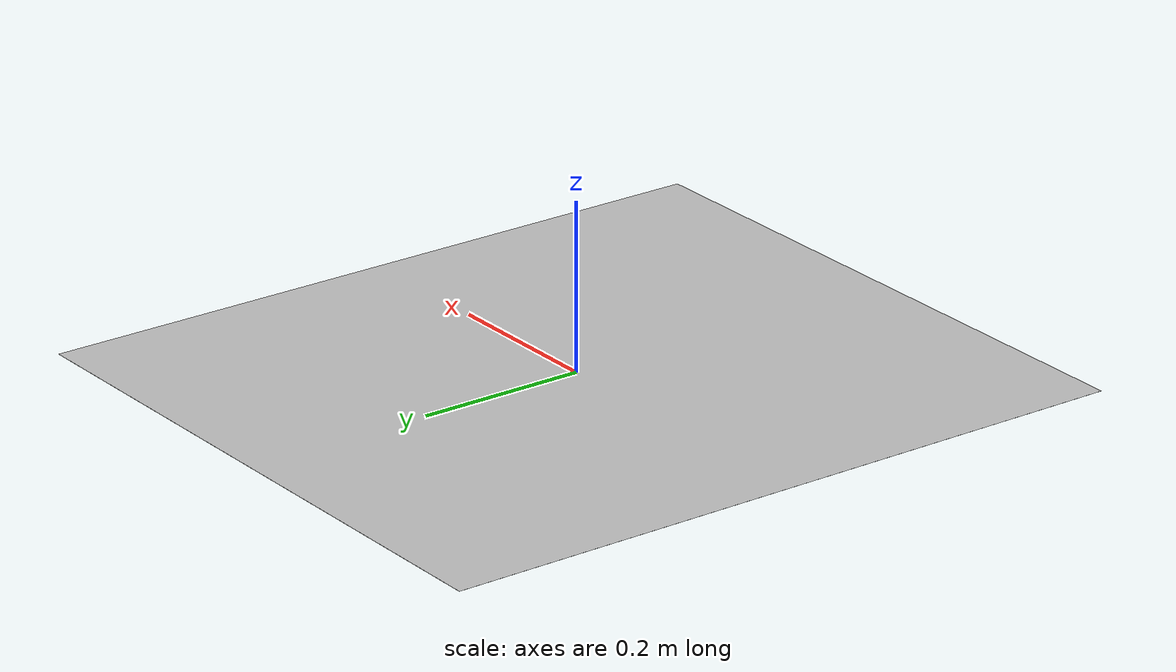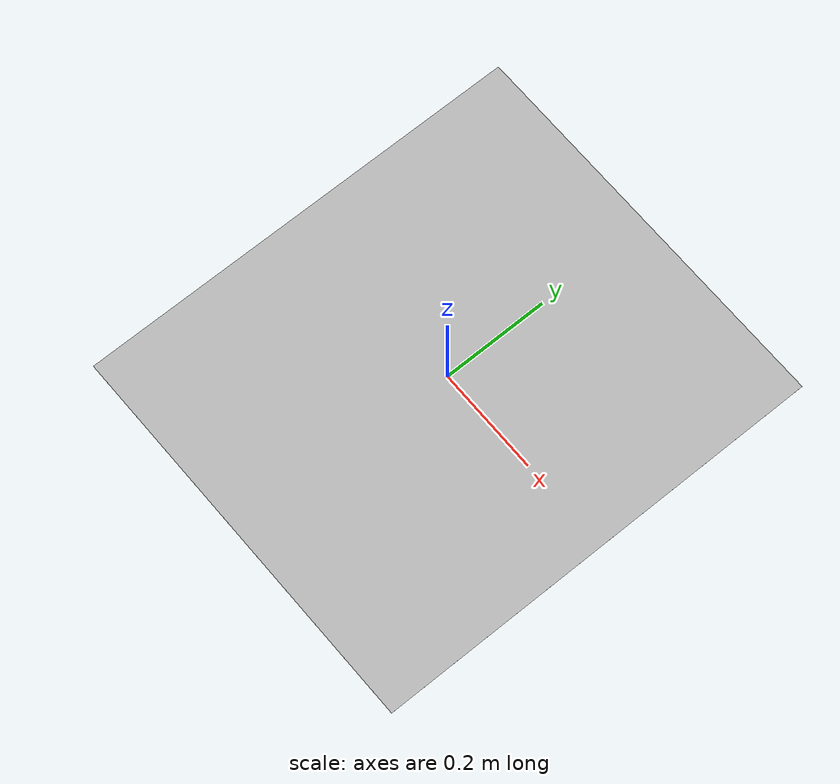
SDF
<?xml version='1.0'?>
<sdf version='1.6'>
  <model name='logo_scara_s_tag'>
  <link name="link1">
		<pose>0 0 0 0 0 0</pose>
		<inertial>
        <pose frame=''>0 0 0 0 0 0</pose>
        <mass>0</mass>
		</inertial>
		<visual name="visual">
	  <pose>0 0 0 0 0 0</pose>
		<geometry>
			<box>
				<size>0.754 0.85 0.0001</size>
			</box>
		</geometry>
		<material>
			<script>
				<uri>model://logo_scara_s_tag/materials/scripts</uri>
				<uri>model://logo_scara_s_tag/materials/textures</uri>
				<name>logo_tag/HG_Logo</name>
			</script>
		</material>
		</visual>
	</link>
  </model>
</sdf>
